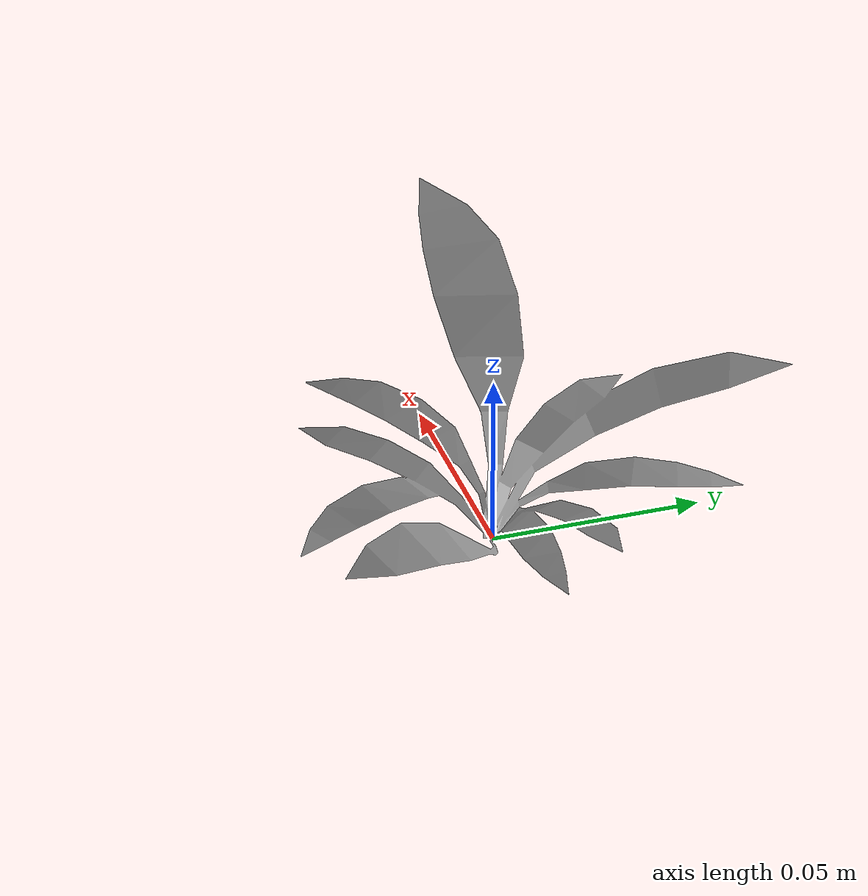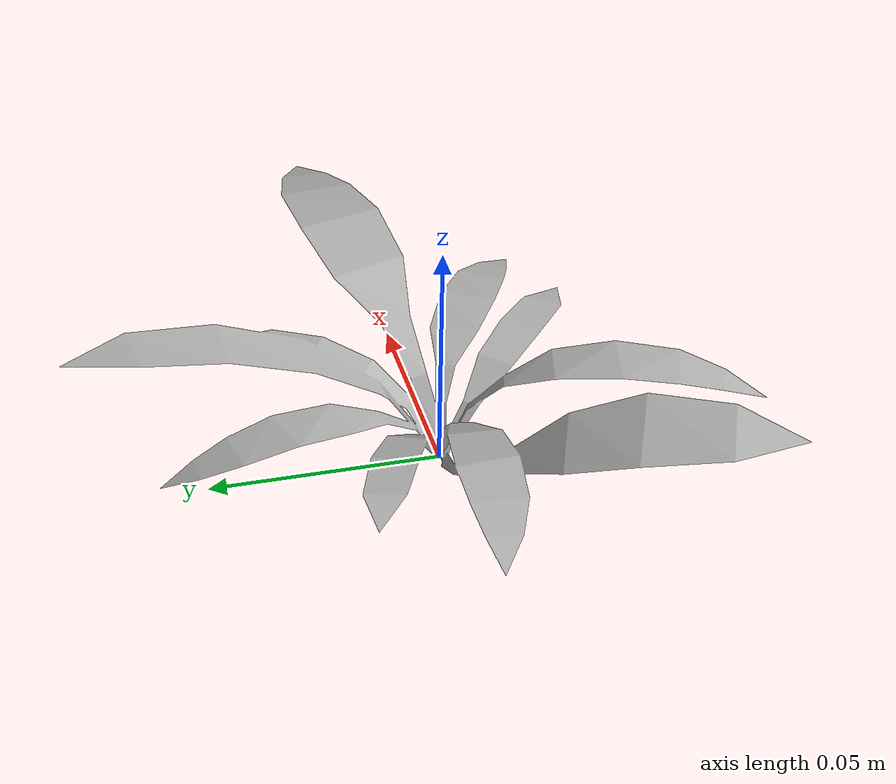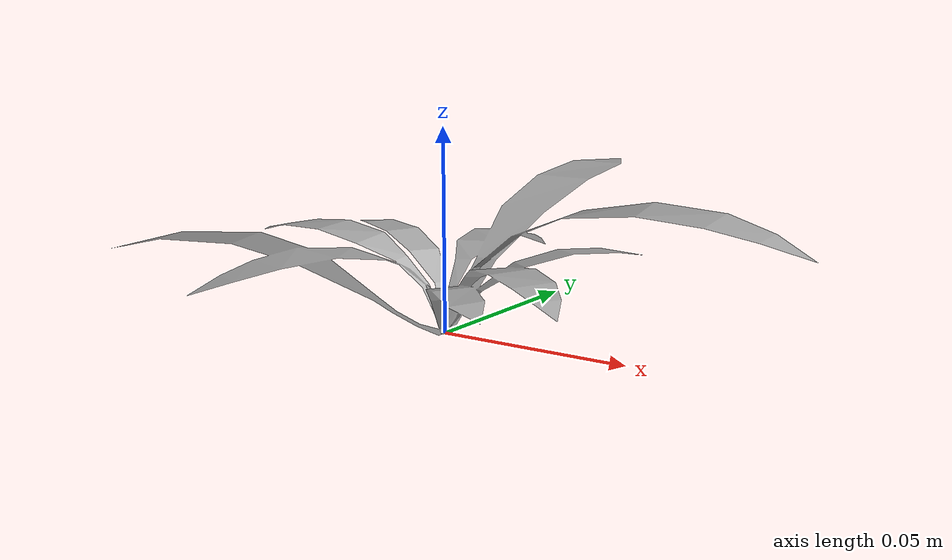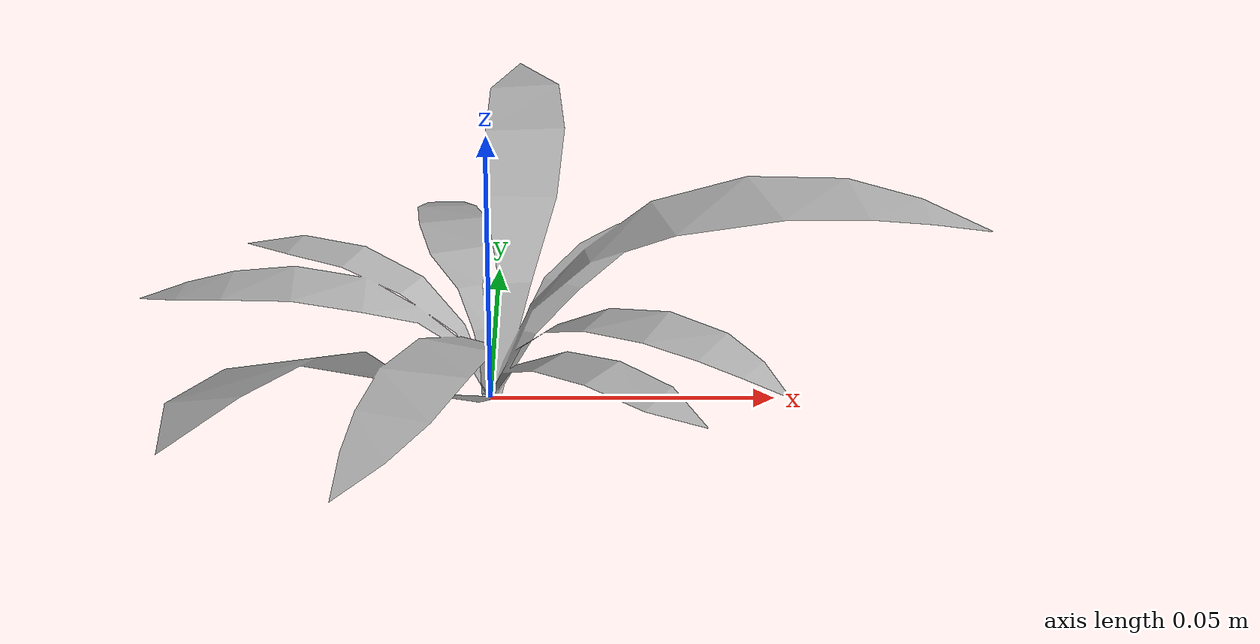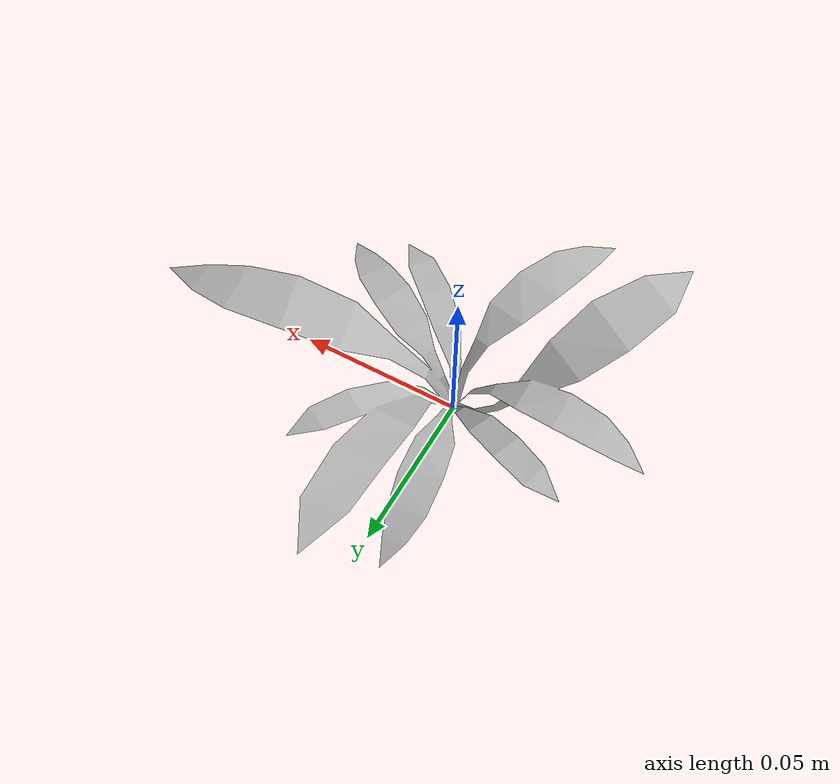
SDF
<?xml version="1.0" ?>
<sdf version="1.6">
  <model name="unknown_weed">
    <static>false</static>
    <link name="link">
      <inertial>
        <mass>0.1</mass>
        <inertia>
          <ixx>0.0000658333</ixx>
          <ixy>0</ixy>
          <ixz>0</ixz>
          <iyy>0.0000658333</iyy>
          <iyz>0</iyz>
          <izz>0.000125</izz>
        </inertia>
        <pose>0 0 0.01 0 0 0 0 0</pose>
      </inertial>
      <collision name="collision_leaves">
        <geometry>
          <mesh>
            <uri>model://unknown_weed/meshes/unknown_weed.dae</uri>
          </mesh>
        </geometry>
        <max_contacts>10</max_contacts>
        <surface>
          <contact>
            <ode/>
          </contact>
          <bounce/>
          <friction>
            <ode>
              <mu>10</mu>
              <mu2>10</mu2>
            </ode>
          </friction>
        </surface>
      </collision>
      <collision name="collision_stem">
        <pose>0 0 0 0 0 0 0 0</pose>
        <geometry>
          <cylinder>
            <radius>0.02</radius>
            <length>0.01</length>
          </cylinder>
        </geometry>
        <max_contacts>10</max_contacts>
        <surface>
          <contact>
            <ode/>
          </contact>
          <bounce/>
          <friction>
            <ode>
              <mu>10</mu>
              <mu2>10</mu2>
            </ode>
          </friction>
        </surface>
      </collision>
      <visual name="visual">
        <geometry>
          <mesh>
            <uri>model://unknown_weed/meshes/unknown_weed.dae</uri>
          </mesh>
        </geometry>
        <material>
          <script>
            <uri>model://unknown_weed/materials/scripts/</uri>
            <uri>model://unknown_weed/materials/textures/</uri>
            <name>unknown_weed_leaf</name>
          </script>
        </material>
      </visual>
    </link>
  </model>
</sdf>
